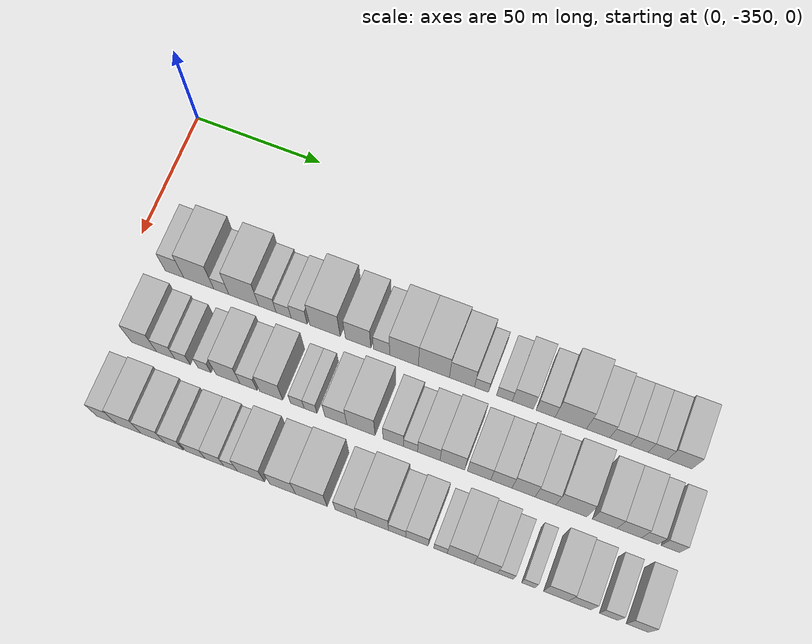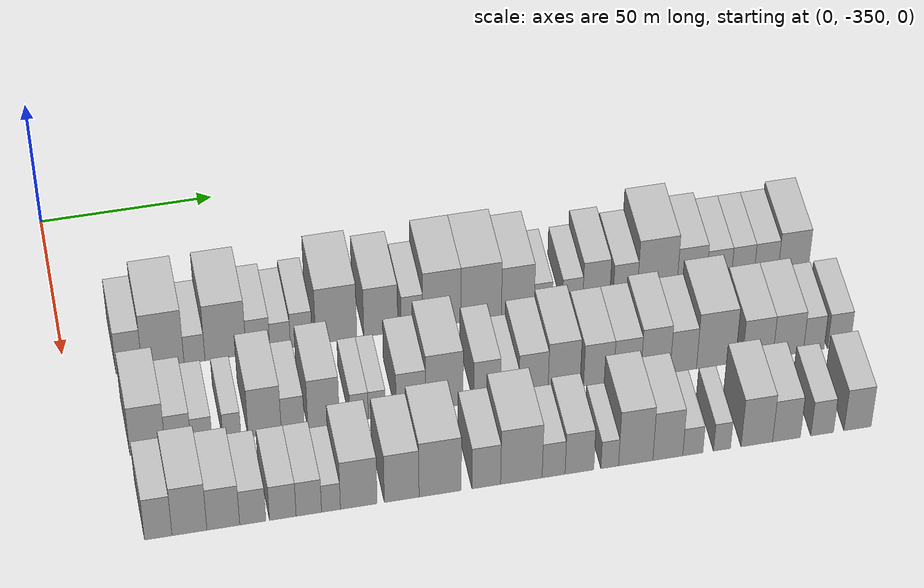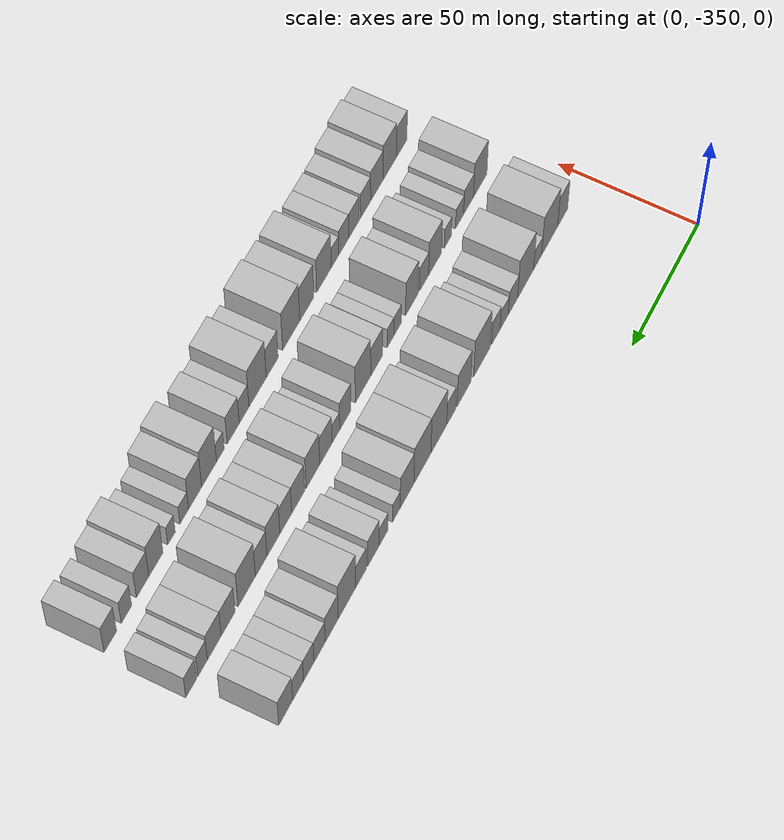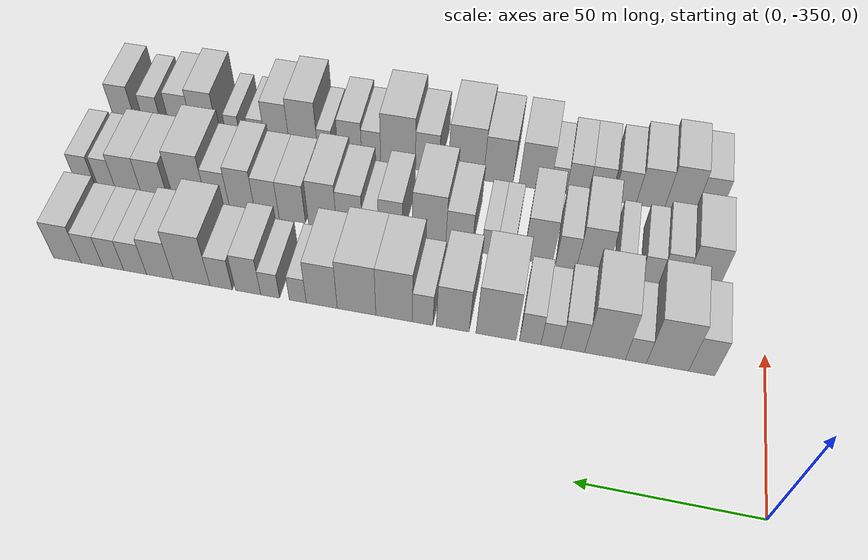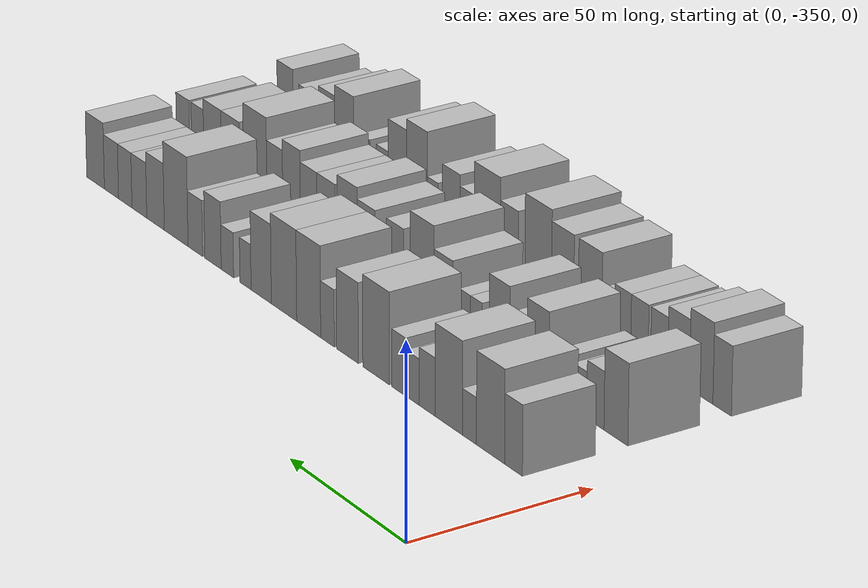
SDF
<sdf version="1.6">
 <world name="default">
  <model name="building_1">
   <static>1</static>
   <pose>50.0000 -332.3108 0 0.000000 0.000000 0.000000</pose>
   <link name="link">
    <pose>0 0 9.00 0 0 0</pose>
    <collision name="collision"><geometry><box><size>20.0000 7.3784 18.0000</size></box></geometry></collision>
    <visual name="visual">
     <cast_shadows>0</cast_shadows>
     <geometry><box><size>20.0000 7.3784 18.0000</size></box></geometry>
     <material>
      <script>
       <uri>model://HANNAS_wall/materials/scripts</uri>
       <uri>model://HANNAS_wall/materials/textures</uri>
       <name>vrc/HANNAS_wall</name>
      </script>
     </material>
    </visual>
   </link>
  </model>
  <model name="building_2">
   <static>1</static>
   <pose>50.0000 -322.6757 0 0.000000 0.000000 0.000000</pose>
   <link name="link">
    <pose>0 0 12.00 0 0 0</pose>
    <collision name="collision"><geometry><box><size>20.0000 11.8918 24.0000</size></box></geometry></collision>
    <visual name="visual">
     <cast_shadows>0</cast_shadows>
     <geometry><box><size>20.0000 11.8918 24.0000</size></box></geometry>
     <material>
      <script>
       <uri>model://HANNAS_wall/materials/scripts</uri>
       <uri>model://HANNAS_wall/materials/textures</uri>
       <name>vrc/HANNAS_wall</name>
      </script>
     </material>
    </visual>
   </link>
  </model>
  <model name="building_3">
   <static>1</static>
   <pose>50.0000 -313.7521 0 0.000000 0.000000 0.000000</pose>
   <link name="link">
    <pose>0 0 6.00 0 0 0</pose>
    <collision name="collision"><geometry><box><size>20.0000 5.9555 12.0000</size></box></geometry></collision>
    <visual name="visual">
     <cast_shadows>0</cast_shadows>
     <geometry><box><size>20.0000 5.9555 12.0000</size></box></geometry>
     <material>
      <script>
       <uri>model://HANNAS_wall/materials/scripts</uri>
       <uri>model://HANNAS_wall/materials/textures</uri>
       <name>vrc/HANNAS_wall</name>
      </script>
     </material>
    </visual>
   </link>
  </model>
  <model name="building_4">
   <static>1</static>
   <pose>50.0000 -304.9141 0 0.000000 0.000000 0.000000</pose>
   <link name="link">
    <pose>0 0 12.00 0 0 0</pose>
    <collision name="collision"><geometry><box><size>20.0000 11.7204 24.0000</size></box></geometry></collision>
    <visual name="visual">
     <cast_shadows>0</cast_shadows>
     <geometry><box><size>20.0000 11.7204 24.0000</size></box></geometry>
     <material>
      <script>
       <uri>model://HANNAS_wall/materials/scripts</uri>
       <uri>model://HANNAS_wall/materials/textures</uri>
       <name>vrc/HANNAS_wall</name>
      </script>
     </material>
    </visual>
   </link>
  </model>
  <model name="building_5">
   <static>1</static>
   <pose>50.0000 -295.6579 0 0.000000 0.000000 0.000000</pose>
   <link name="link">
    <pose>0 0 7.50 0 0 0</pose>
    <collision name="collision"><geometry><box><size>20.0000 6.7922 15.0000</size></box></geometry></collision>
    <visual name="visual">
     <cast_shadows>0</cast_shadows>
     <geometry><box><size>20.0000 6.7922 15.0000</size></box></geometry>
     <material>
      <script>
       <uri>model://HANNAS_wall/materials/scripts</uri>
       <uri>model://HANNAS_wall/materials/textures</uri>
       <name>vrc/HANNAS_wall</name>
      </script>
     </material>
    </visual>
   </link>
  </model>
  <model name="building_6">
   <static>1</static>
   <pose>50.0000 -289.3308 0 0.000000 0.000000 0.000000</pose>
   <link name="link">
    <pose>0 0 6.00 0 0 0</pose>
    <collision name="collision"><geometry><box><size>20.0000 5.8620 12.0000</size></box></geometry></collision>
    <visual name="visual">
     <cast_shadows>0</cast_shadows>
     <geometry><box><size>20.0000 5.8620 12.0000</size></box></geometry>
     <material>
      <script>
       <uri>model://HANNAS_wall/materials/scripts</uri>
       <uri>model://HANNAS_wall/materials/textures</uri>
       <name>vrc/HANNAS_wall</name>
      </script>
     </material>
    </visual>
   </link>
  </model>
  <model name="building_7">
   <static>1</static>
   <pose>50.0000 -283.2751 0 0.000000 0.000000 0.000000</pose>
   <link name="link">
    <pose>0 0 7.50 0 0 0</pose>
    <collision name="collision"><geometry><box><size>20.0000 6.2495 15.0000</size></box></geometry></collision>
    <visual name="visual">
     <cast_shadows>0</cast_shadows>
     <geometry><box><size>20.0000 6.2495 15.0000</size></box></geometry>
     <material>
      <script>
       <uri>model://HANNAS_wall/materials/scripts</uri>
       <uri>model://HANNAS_wall/materials/textures</uri>
       <name>vrc/HANNAS_wall</name>
      </script>
     </material>
    </visual>
   </link>
  </model>
  <model name="building_8">
   <static>1</static>
   <pose>50.0000 -273.2526 0 0.000000 0.000000 0.000000</pose>
   <link name="link">
    <pose>0 0 12.00 0 0 0</pose>
    <collision name="collision"><geometry><box><size>20.0000 11.7955 24.0000</size></box></geometry></collision>
    <visual name="visual">
     <cast_shadows>0</cast_shadows>
     <geometry><box><size>20.0000 11.7955 24.0000</size></box></geometry>
     <material>
      <script>
       <uri>model://HANNAS_wall/materials/scripts</uri>
       <uri>model://HANNAS_wall/materials/textures</uri>
       <name>vrc/HANNAS_wall</name>
      </script>
     </material>
    </visual>
   </link>
  </model>
  <model name="building_9">
   <static>1</static>
   <pose>50.0000 -260.4622 0 0.000000 0.000000 0.000000</pose>
   <link name="link">
    <pose>0 0 10.50 0 0 0</pose>
    <collision name="collision"><geometry><box><size>20.0000 9.7853 21.0000</size></box></geometry></collision>
    <visual name="visual">
     <cast_shadows>0</cast_shadows>
     <geometry><box><size>20.0000 9.7853 21.0000</size></box></geometry>
     <material>
      <script>
       <uri>model://HANNAS_wall/materials/scripts</uri>
       <uri>model://HANNAS_wall/materials/textures</uri>
       <name>vrc/HANNAS_wall</name>
      </script>
     </material>
    </visual>
   </link>
  </model>
  <model name="building_10">
   <static>1</static>
   <pose>50.0000 -251.4611 0 0.000000 0.000000 0.000000</pose>
   <link name="link">
    <pose>0 0 7.50 0 0 0</pose>
    <collision name="collision"><geometry><box><size>20.0000 6.2170 15.0000</size></box></geometry></collision>
    <visual name="visual">
     <cast_shadows>0</cast_shadows>
     <geometry><box><size>20.0000 6.2170 15.0000</size></box></geometry>
     <material>
      <script>
       <uri>model://HANNAS_wall/materials/scripts</uri>
       <uri>model://HANNAS_wall/materials/textures</uri>
       <name>vrc/HANNAS_wall</name>
      </script>
     </material>
    </visual>
   </link>
  </model>
  <model name="building_11">
   <static>1</static>
   <pose>50.0000 -242.8656 0 0.000000 0.000000 0.000000</pose>
   <link name="link">
    <pose>0 0 12.00 0 0 0</pose>
    <collision name="collision"><geometry><box><size>20.0000 10.9740 24.0000</size></box></geometry></collision>
    <visual name="visual">
     <cast_shadows>0</cast_shadows>
     <geometry><box><size>20.0000 10.9740 24.0000</size></box></geometry>
     <material>
      <script>
       <uri>model://HANNAS_wall/materials/scripts</uri>
       <uri>model://HANNAS_wall/materials/textures</uri>
       <name>vrc/HANNAS_wall</name>
      </script>
     </material>
    </visual>
   </link>
  </model>
  <model name="building_12">
   <static>1</static>
   <pose>50.0000 -231.5068 0 0.000000 0.000000 0.000000</pose>
   <link name="link">
    <pose>0 0 12.00 0 0 0</pose>
    <collision name="collision"><geometry><box><size>20.0000 11.7435 24.0000</size></box></geometry></collision>
    <visual name="visual">
     <cast_shadows>0</cast_shadows>
     <geometry><box><size>20.0000 11.7435 24.0000</size></box></geometry>
     <material>
      <script>
       <uri>model://HANNAS_wall/materials/scripts</uri>
       <uri>model://HANNAS_wall/materials/textures</uri>
       <name>vrc/HANNAS_wall</name>
      </script>
     </material>
    </visual>
   </link>
  </model>
  <model name="building_13">
   <static>1</static>
   <pose>50.0000 -220.8834 0 0.000000 0.000000 0.000000</pose>
   <link name="link">
    <pose>0 0 10.50 0 0 0</pose>
    <collision name="collision"><geometry><box><size>20.0000 9.5034 21.0000</size></box></geometry></collision>
    <visual name="visual">
     <cast_shadows>0</cast_shadows>
     <geometry><box><size>20.0000 9.5034 21.0000</size></box></geometry>
     <material>
      <script>
       <uri>model://HANNAS_wall/materials/scripts</uri>
       <uri>model://HANNAS_wall/materials/textures</uri>
       <name>vrc/HANNAS_wall</name>
      </script>
     </material>
    </visual>
   </link>
  </model>
  <model name="building_14">
   <static>1</static>
   <pose>50.0000 -213.5074 0 0.000000 0.000000 0.000000</pose>
   <link name="link">
    <pose>0 0 6.00 0 0 0</pose>
    <collision name="collision"><geometry><box><size>20.0000 5.2485 12.0000</size></box></geometry></collision>
    <visual name="visual">
     <cast_shadows>0</cast_shadows>
     <geometry><box><size>20.0000 5.2485 12.0000</size></box></geometry>
     <material>
      <script>
       <uri>model://HANNAS_wall/materials/scripts</uri>
       <uri>model://HANNAS_wall/materials/textures</uri>
       <name>vrc/HANNAS_wall</name>
      </script>
     </material>
    </visual>
   </link>
  </model>
  <model name="building_15">
   <static>1</static>
   <pose>50.0000 -204.9327 0 0.000000 0.000000 0.000000</pose>
   <link name="link">
    <pose>0 0 6.00 0 0 0</pose>
    <collision name="collision"><geometry><box><size>20.0000 5.9009 12.0000</size></box></geometry></collision>
    <visual name="visual">
     <cast_shadows>0</cast_shadows>
     <geometry><box><size>20.0000 5.9009 12.0000</size></box></geometry>
     <material>
      <script>
       <uri>model://HANNAS_wall/materials/scripts</uri>
       <uri>model://HANNAS_wall/materials/textures</uri>
       <name>vrc/HANNAS_wall</name>
      </script>
     </material>
    </visual>
   </link>
  </model>
  <model name="building_16">
   <static>1</static>
   <pose>50.0000 -198.0368 0 0.000000 0.000000 0.000000</pose>
   <link name="link">
    <pose>0 0 9.00 0 0 0</pose>
    <collision name="collision"><geometry><box><size>20.0000 7.8909 18.0000</size></box></geometry></collision>
    <visual name="visual">
     <cast_shadows>0</cast_shadows>
     <geometry><box><size>20.0000 7.8909 18.0000</size></box></geometry>
     <material>
      <script>
       <uri>model://HANNAS_wall/materials/scripts</uri>
       <uri>model://HANNAS_wall/materials/textures</uri>
       <name>vrc/HANNAS_wall</name>
      </script>
     </material>
    </visual>
   </link>
  </model>
  <model name="building_17">
   <static>1</static>
   <pose>50.0000 -189.5575 0 0.000000 0.000000 0.000000</pose>
   <link name="link">
    <pose>0 0 7.50 0 0 0</pose>
    <collision name="collision"><geometry><box><size>20.0000 7.0677 15.0000</size></box></geometry></collision>
    <visual name="visual">
     <cast_shadows>0</cast_shadows>
     <geometry><box><size>20.0000 7.0677 15.0000</size></box></geometry>
     <material>
      <script>
       <uri>model://HANNAS_wall/materials/scripts</uri>
       <uri>model://HANNAS_wall/materials/textures</uri>
       <name>vrc/HANNAS_wall</name>
      </script>
     </material>
    </visual>
   </link>
  </model>
  <model name="building_18">
   <static>1</static>
   <pose>50.0000 -180.2230 0 0.000000 0.000000 0.000000</pose>
   <link name="link">
    <pose>0 0 12.00 0 0 0</pose>
    <collision name="collision"><geometry><box><size>20.0000 11.6012 24.0000</size></box></geometry></collision>
    <visual name="visual">
     <cast_shadows>0</cast_shadows>
     <geometry><box><size>20.0000 11.6012 24.0000</size></box></geometry>
     <material>
      <script>
       <uri>model://HANNAS_wall/materials/scripts</uri>
       <uri>model://HANNAS_wall/materials/textures</uri>
       <name>vrc/HANNAS_wall</name>
      </script>
     </material>
    </visual>
   </link>
  </model>
  <model name="building_19">
   <static>1</static>
   <pose>50.0000 -170.1049 0 0.000000 0.000000 0.000000</pose>
   <link name="link">
    <pose>0 0 9.00 0 0 0</pose>
    <collision name="collision"><geometry><box><size>20.0000 8.6351 18.0000</size></box></geometry></collision>
    <visual name="visual">
     <cast_shadows>0</cast_shadows>
     <geometry><box><size>20.0000 8.6351 18.0000</size></box></geometry>
     <material>
      <script>
       <uri>model://HANNAS_wall/materials/scripts</uri>
       <uri>model://HANNAS_wall/materials/textures</uri>
       <name>vrc/HANNAS_wall</name>
      </script>
     </material>
    </visual>
   </link>
  </model>
  <model name="building_20">
   <static>1</static>
   <pose>50.0000 -162.1165 0 0.000000 0.000000 0.000000</pose>
   <link name="link">
    <pose>0 0 7.50 0 0 0</pose>
    <collision name="collision"><geometry><box><size>20.0000 7.3418 15.0000</size></box></geometry></collision>
    <visual name="visual">
     <cast_shadows>0</cast_shadows>
     <geometry><box><size>20.0000 7.3418 15.0000</size></box></geometry>
     <material>
      <script>
       <uri>model://HANNAS_wall/materials/scripts</uri>
       <uri>model://HANNAS_wall/materials/textures</uri>
       <name>vrc/HANNAS_wall</name>
      </script>
     </material>
    </visual>
   </link>
  </model>
  <model name="building_21">
   <static>1</static>
   <pose>50.0000 -155.0835 0 0.000000 0.000000 0.000000</pose>
   <link name="link">
    <pose>0 0 7.50 0 0 0</pose>
    <collision name="collision"><geometry><box><size>20.0000 6.7240 15.0000</size></box></geometry></collision>
    <visual name="visual">
     <cast_shadows>0</cast_shadows>
     <geometry><box><size>20.0000 6.7240 15.0000</size></box></geometry>
     <material>
      <script>
       <uri>model://HANNAS_wall/materials/scripts</uri>
       <uri>model://HANNAS_wall/materials/textures</uri>
       <name>vrc/HANNAS_wall</name>
      </script>
     </material>
    </visual>
   </link>
  </model>
  <model name="building_22">
   <static>1</static>
   <pose>50.0000 -148.1666 0 0.000000 0.000000 0.000000</pose>
   <link name="link">
    <pose>0 0 7.50 0 0 0</pose>
    <collision name="collision"><geometry><box><size>20.0000 7.1098 15.0000</size></box></geometry></collision>
    <visual name="visual">
     <cast_shadows>0</cast_shadows>
     <geometry><box><size>20.0000 7.1098 15.0000</size></box></geometry>
     <material>
      <script>
       <uri>model://HANNAS_wall/materials/scripts</uri>
       <uri>model://HANNAS_wall/materials/textures</uri>
       <name>vrc/HANNAS_wall</name>
      </script>
     </material>
    </visual>
   </link>
  </model>
  <model name="building_23">
   <static>1</static>
   <pose>50.0000 -140.1274 0 0.000000 0.000000 0.000000</pose>
   <link name="link">
    <pose>0 0 9.00 0 0 0</pose>
    <collision name="collision"><geometry><box><size>20.0000 8.9688 18.0000</size></box></geometry></collision>
    <visual name="visual">
     <cast_shadows>0</cast_shadows>
     <geometry><box><size>20.0000 8.9688 18.0000</size></box></geometry>
     <material>
      <script>
       <uri>model://HANNAS_wall/materials/scripts</uri>
       <uri>model://HANNAS_wall/materials/textures</uri>
       <name>vrc/HANNAS_wall</name>
      </script>
     </material>
    </visual>
   </link>
  </model>
  <model name="building_67">
   <static>1</static>
   <pose>79.0000 -331.0777 0 0.000000 0.000000 0.000000</pose>
   <link name="link">
    <pose>0 0 10.50 0 0 0</pose>
    <collision name="collision"><geometry><box><size>20.0000 9.8445 21.0000</size></box></geometry></collision>
    <visual name="visual">
     <cast_shadows>0</cast_shadows>
     <geometry><box><size>20.0000 9.8445 21.0000</size></box></geometry>
     <material>
      <script>
       <uri>model://HANNAS_wall/materials/scripts</uri>
       <uri>model://HANNAS_wall/materials/textures</uri>
       <name>vrc/HANNAS_wall</name>
      </script>
     </material>
    </visual>
   </link>
  </model>
  <model name="building_68">
   <static>1</static>
   <pose>79.0000 -322.5721 0 0.000000 0.000000 0.000000</pose>
   <link name="link">
    <pose>0 0 7.50 0 0 0</pose>
    <collision name="collision"><geometry><box><size>20.0000 7.1668 15.0000</size></box></geometry></collision>
    <visual name="visual">
     <cast_shadows>0</cast_shadows>
     <geometry><box><size>20.0000 7.1668 15.0000</size></box></geometry>
     <material>
      <script>
       <uri>model://HANNAS_wall/materials/scripts</uri>
       <uri>model://HANNAS_wall/materials/textures</uri>
       <name>vrc/HANNAS_wall</name>
      </script>
     </material>
    </visual>
   </link>
  </model>
  <model name="building_69">
   <static>1</static>
   <pose>79.0000 -316.0284 0 0.000000 0.000000 0.000000</pose>
   <link name="link">
    <pose>0 0 6.00 0 0 0</pose>
    <collision name="collision"><geometry><box><size>20.0000 5.9204 12.0000</size></box></geometry></collision>
    <visual name="visual">
     <cast_shadows>0</cast_shadows>
     <geometry><box><size>20.0000 5.9204 12.0000</size></box></geometry>
     <material>
      <script>
       <uri>model://HANNAS_wall/materials/scripts</uri>
       <uri>model://HANNAS_wall/materials/textures</uri>
       <name>vrc/HANNAS_wall</name>
      </script>
     </material>
    </visual>
   </link>
  </model>
  <model name="building_70">
   <static>1</static>
   <pose>79.0000 -307.5376 0 0.000000 0.000000 0.000000</pose>
   <link name="link">
    <pose>0 0 6.00 0 0 0</pose>
    <collision name="collision"><geometry><box><size>20.0000 5.0613 12.0000</size></box></geometry></collision>
    <visual name="visual">
     <cast_shadows>0</cast_shadows>
     <geometry><box><size>20.0000 5.0613 12.0000</size></box></geometry>
     <material>
      <script>
       <uri>model://HANNAS_wall/materials/scripts</uri>
       <uri>model://HANNAS_wall/materials/textures</uri>
       <name>vrc/HANNAS_wall</name>
      </script>
     </material>
    </visual>
   </link>
  </model>
  <model name="building_71">
   <static>1</static>
   <pose>79.0000 -298.3818 0 0.000000 0.000000 0.000000</pose>
   <link name="link">
    <pose>0 0 10.50 0 0 0</pose>
    <collision name="collision"><geometry><box><size>20.0000 9.2502 21.0000</size></box></geometry></collision>
    <visual name="visual">
     <cast_shadows>0</cast_shadows>
     <geometry><box><size>20.0000 9.2502 21.0000</size></box></geometry>
     <material>
      <script>
       <uri>model://HANNAS_wall/materials/scripts</uri>
       <uri>model://HANNAS_wall/materials/textures</uri>
       <name>vrc/HANNAS_wall</name>
      </script>
     </material>
    </visual>
   </link>
  </model>
  <model name="building_72">
   <static>1</static>
   <pose>79.0000 -290.5186 0 0.000000 0.000000 0.000000</pose>
   <link name="link">
    <pose>0 0 7.50 0 0 0</pose>
    <collision name="collision"><geometry><box><size>20.0000 6.4762 15.0000</size></box></geometry></collision>
    <visual name="visual">
     <cast_shadows>0</cast_shadows>
     <geometry><box><size>20.0000 6.4762 15.0000</size></box></geometry>
     <material>
      <script>
       <uri>model://HANNAS_wall/materials/scripts</uri>
       <uri>model://HANNAS_wall/materials/textures</uri>
       <name>vrc/HANNAS_wall</name>
      </script>
     </material>
    </visual>
   </link>
  </model>
  <model name="building_73">
   <static>1</static>
   <pose>79.0000 -281.8414 0 0.000000 0.000000 0.000000</pose>
   <link name="link">
    <pose>0 0 10.50 0 0 0</pose>
    <collision name="collision"><geometry><box><size>20.0000 8.8783 21.0000</size></box></geometry></collision>
    <visual name="visual">
     <cast_shadows>0</cast_shadows>
     <geometry><box><size>20.0000 8.8783 21.0000</size></box></geometry>
     <material>
      <script>
       <uri>model://HANNAS_wall/materials/scripts</uri>
       <uri>model://HANNAS_wall/materials/textures</uri>
       <name>vrc/HANNAS_wall</name>
      </script>
     </material>
    </visual>
   </link>
  </model>
  <model name="building_74">
   <static>1</static>
   <pose>79.0000 -271.8258 0 0.000000 0.000000 0.000000</pose>
   <link name="link">
    <pose>0 0 6.00 0 0 0</pose>
    <collision name="collision"><geometry><box><size>20.0000 5.1529 12.0000</size></box></geometry></collision>
    <visual name="visual">
     <cast_shadows>0</cast_shadows>
     <geometry><box><size>20.0000 5.1529 12.0000</size></box></geometry>
     <material>
      <script>
       <uri>model://HANNAS_wall/materials/scripts</uri>
       <uri>model://HANNAS_wall/materials/textures</uri>
       <name>vrc/HANNAS_wall</name>
      </script>
     </material>
    </visual>
   </link>
  </model>
  <model name="building_75">
   <static>1</static>
   <pose>79.0000 -266.8189 0 0.000000 0.000000 0.000000</pose>
   <link name="link">
    <pose>0 0 6.00 0 0 0</pose>
    <collision name="collision"><geometry><box><size>20.0000 4.8611 12.0000</size></box></geometry></collision>
    <visual name="visual">
     <cast_shadows>0</cast_shadows>
     <geometry><box><size>20.0000 4.8611 12.0000</size></box></geometry>
     <material>
      <script>
       <uri>model://HANNAS_wall/materials/scripts</uri>
       <uri>model://HANNAS_wall/materials/textures</uri>
       <name>vrc/HANNAS_wall</name>
      </script>
     </material>
    </visual>
   </link>
  </model>
  <model name="building_76">
   <static>1</static>
   <pose>79.0000 -257.2278 0 0.000000 0.000000 0.000000</pose>
   <link name="link">
    <pose>0 0 9.00 0 0 0</pose>
    <collision name="collision"><geometry><box><size>20.0000 8.3211 18.0000</size></box></geometry></collision>
    <visual name="visual">
     <cast_shadows>0</cast_shadows>
     <geometry><box><size>20.0000 8.3211 18.0000</size></box></geometry>
     <material>
      <script>
       <uri>model://HANNAS_wall/materials/scripts</uri>
       <uri>model://HANNAS_wall/materials/textures</uri>
       <name>vrc/HANNAS_wall</name>
      </script>
     </material>
    </visual>
   </link>
  </model>
  <model name="building_77">
   <static>1</static>
   <pose>79.0000 -247.7538 0 0.000000 0.000000 0.000000</pose>
   <link name="link">
    <pose>0 0 12.00 0 0 0</pose>
    <collision name="collision"><geometry><box><size>20.0000 10.6268 24.0000</size></box></geometry></collision>
    <visual name="visual">
     <cast_shadows>0</cast_shadows>
     <geometry><box><size>20.0000 10.6268 24.0000</size></box></geometry>
     <material>
      <script>
       <uri>model://HANNAS_wall/materials/scripts</uri>
       <uri>model://HANNAS_wall/materials/textures</uri>
       <name>vrc/HANNAS_wall</name>
      </script>
     </material>
    </visual>
   </link>
  </model>
  <model name="building_78">
   <static>1</static>
   <pose>79.0000 -235.6024 0 0.000000 0.000000 0.000000</pose>
   <link name="link">
    <pose>0 0 9.00 0 0 0</pose>
    <collision name="collision"><geometry><box><size>20.0000 7.6760 18.0000</size></box></geometry></collision>
    <visual name="visual">
     <cast_shadows>0</cast_shadows>
     <geometry><box><size>20.0000 7.6760 18.0000</size></box></geometry>
     <material>
      <script>
       <uri>model://HANNAS_wall/materials/scripts</uri>
       <uri>model://HANNAS_wall/materials/textures</uri>
       <name>vrc/HANNAS_wall</name>
      </script>
     </material>
    </visual>
   </link>
  </model>
  <model name="building_79">
   <static>1</static>
   <pose>79.0000 -229.1587 0 0.000000 0.000000 0.000000</pose>
   <link name="link">
    <pose>0 0 6.00 0 0 0</pose>
    <collision name="collision"><geometry><box><size>20.0000 5.2114 12.0000</size></box></geometry></collision>
    <visual name="visual">
     <cast_shadows>0</cast_shadows>
     <geometry><box><size>20.0000 5.2114 12.0000</size></box></geometry>
     <material>
      <script>
       <uri>model://HANNAS_wall/materials/scripts</uri>
       <uri>model://HANNAS_wall/materials/textures</uri>
       <name>vrc/HANNAS_wall</name>
      </script>
     </material>
    </visual>
   </link>
  </model>
  <model name="building_80">
   <static>1</static>
   <pose>79.0000 -222.3846 0 0.000000 0.000000 0.000000</pose>
   <link name="link">
    <pose>0 0 9.00 0 0 0</pose>
    <collision name="collision"><geometry><box><size>20.0000 8.3369 18.0000</size></box></geometry></collision>
    <visual name="visual">
     <cast_shadows>0</cast_shadows>
     <geometry><box><size>20.0000 8.3369 18.0000</size></box></geometry>
     <material>
      <script>
       <uri>model://HANNAS_wall/materials/scripts</uri>
       <uri>model://HANNAS_wall/materials/textures</uri>
       <name>vrc/HANNAS_wall</name>
      </script>
     </material>
    </visual>
   </link>
  </model>
  <model name="building_81">
   <static>1</static>
   <pose>79.0000 -213.6315 0 0.000000 0.000000 0.000000</pose>
   <link name="link">
    <pose>0 0 10.50 0 0 0</pose>
    <collision name="collision"><geometry><box><size>20.0000 9.1692 21.0000</size></box></geometry></collision>
    <visual name="visual">
     <cast_shadows>0</cast_shadows>
     <geometry><box><size>20.0000 9.1692 21.0000</size></box></geometry>
     <material>
      <script>
       <uri>model://HANNAS_wall/materials/scripts</uri>
       <uri>model://HANNAS_wall/materials/textures</uri>
       <name>vrc/HANNAS_wall</name>
      </script>
     </material>
    </visual>
   </link>
  </model>
  <model name="building_82">
   <static>1</static>
   <pose>79.0000 -203.7266 0 0.000000 0.000000 0.000000</pose>
   <link name="link">
    <pose>0 0 9.00 0 0 0</pose>
    <collision name="collision"><geometry><box><size>20.0000 8.6408 18.0000</size></box></geometry></collision>
    <visual name="visual">
     <cast_shadows>0</cast_shadows>
     <geometry><box><size>20.0000 8.6408 18.0000</size></box></geometry>
     <material>
      <script>
       <uri>model://HANNAS_wall/materials/scripts</uri>
       <uri>model://HANNAS_wall/materials/textures</uri>
       <name>vrc/HANNAS_wall</name>
      </script>
     </material>
    </visual>
   </link>
  </model>
  <model name="building_83">
   <static>1</static>
   <pose>79.0000 -195.5025 0 0.000000 0.000000 0.000000</pose>
   <link name="link">
    <pose>0 0 9.00 0 0 0</pose>
    <collision name="collision"><geometry><box><size>20.0000 7.8075 18.0000</size></box></geometry></collision>
    <visual name="visual">
     <cast_shadows>0</cast_shadows>
     <geometry><box><size>20.0000 7.8075 18.0000</size></box></geometry>
     <material>
      <script>
       <uri>model://HANNAS_wall/materials/scripts</uri>
       <uri>model://HANNAS_wall/materials/textures</uri>
       <name>vrc/HANNAS_wall</name>
      </script>
     </material>
    </visual>
   </link>
  </model>
  <model name="building_84">
   <static>1</static>
   <pose>79.0000 -187.3815 0 0.000000 0.000000 0.000000</pose>
   <link name="link">
    <pose>0 0 10.50 0 0 0</pose>
    <collision name="collision"><geometry><box><size>20.0000 8.4344 21.0000</size></box></geometry></collision>
    <visual name="visual">
     <cast_shadows>0</cast_shadows>
     <geometry><box><size>20.0000 8.4344 21.0000</size></box></geometry>
     <material>
      <script>
       <uri>model://HANNAS_wall/materials/scripts</uri>
       <uri>model://HANNAS_wall/materials/textures</uri>
       <name>vrc/HANNAS_wall</name>
      </script>
     </material>
    </visual>
   </link>
  </model>
  <model name="building_85">
   <static>1</static>
   <pose>79.0000 -179.3640 0 0.000000 0.000000 0.000000</pose>
   <link name="link">
    <pose>0 0 9.00 0 0 0</pose>
    <collision name="collision"><geometry><box><size>20.0000 7.6006 18.0000</size></box></geometry></collision>
    <visual name="visual">
     <cast_shadows>0</cast_shadows>
     <geometry><box><size>20.0000 7.6006 18.0000</size></box></geometry>
     <material>
      <script>
       <uri>model://HANNAS_wall/materials/scripts</uri>
       <uri>model://HANNAS_wall/materials/textures</uri>
       <name>vrc/HANNAS_wall</name>
      </script>
     </material>
    </visual>
   </link>
  </model>
  <model name="building_86">
   <static>1</static>
   <pose>79.0000 -169.9344 0 0.000000 0.000000 0.000000</pose>
   <link name="link">
    <pose>0 0 12.00 0 0 0</pose>
    <collision name="collision"><geometry><box><size>20.0000 11.2585 24.0000</size></box></geometry></collision>
    <visual name="visual">
     <cast_shadows>0</cast_shadows>
     <geometry><box><size>20.0000 11.2585 24.0000</size></box></geometry>
     <material>
      <script>
       <uri>model://HANNAS_wall/materials/scripts</uri>
       <uri>model://HANNAS_wall/materials/textures</uri>
       <name>vrc/HANNAS_wall</name>
      </script>
     </material>
    </visual>
   </link>
  </model>
  <model name="building_87">
   <static>1</static>
   <pose>79.0000 -157.8646 0 0.000000 0.000000 0.000000</pose>
   <link name="link">
    <pose>0 0 9.00 0 0 0</pose>
    <collision name="collision"><geometry><box><size>20.0000 8.8811 18.0000</size></box></geometry></collision>
    <visual name="visual">
     <cast_shadows>0</cast_shadows>
     <geometry><box><size>20.0000 8.8811 18.0000</size></box></geometry>
     <material>
      <script>
       <uri>model://HANNAS_wall/materials/scripts</uri>
       <uri>model://HANNAS_wall/materials/textures</uri>
       <name>vrc/HANNAS_wall</name>
      </script>
     </material>
    </visual>
   </link>
  </model>
  <model name="building_88">
   <static>1</static>
   <pose>79.0000 -149.0118 0 0.000000 0.000000 0.000000</pose>
   <link name="link">
    <pose>0 0 9.00 0 0 0</pose>
    <collision name="collision"><geometry><box><size>20.0000 8.8245 18.0000</size></box></geometry></collision>
    <visual name="visual">
     <cast_shadows>0</cast_shadows>
     <geometry><box><size>20.0000 8.8245 18.0000</size></box></geometry>
     <material>
      <script>
       <uri>model://HANNAS_wall/materials/scripts</uri>
       <uri>model://HANNAS_wall/materials/textures</uri>
       <name>vrc/HANNAS_wall</name>
      </script>
     </material>
    </visual>
   </link>
  </model>
  <model name="building_89">
   <static>1</static>
   <pose>79.0000 -141.5870 0 0.000000 0.000000 0.000000</pose>
   <link name="link">
    <pose>0 0 7.50 0 0 0</pose>
    <collision name="collision"><geometry><box><size>20.0000 6.0252 15.0000</size></box></geometry></collision>
    <visual name="visual">
     <cast_shadows>0</cast_shadows>
     <geometry><box><size>20.0000 6.0252 15.0000</size></box></geometry>
     <material>
      <script>
       <uri>model://HANNAS_wall/materials/scripts</uri>
       <uri>model://HANNAS_wall/materials/textures</uri>
       <name>vrc/HANNAS_wall</name>
      </script>
     </material>
    </visual>
   </link>
  </model>
  <model name="building_90">
   <static>1</static>
   <pose>79.0000 -134.2580 0 0.000000 0.000000 0.000000</pose>
   <link name="link">
    <pose>0 0 7.50 0 0 0</pose>
    <collision name="collision"><geometry><box><size>20.0000 6.6327 15.0000</size></box></geometry></collision>
    <visual name="visual">
     <cast_shadows>0</cast_shadows>
     <geometry><box><size>20.0000 6.6327 15.0000</size></box></geometry>
     <material>
      <script>
       <uri>model://HANNAS_wall/materials/scripts</uri>
       <uri>model://HANNAS_wall/materials/textures</uri>
       <name>vrc/HANNAS_wall</name>
      </script>
     </material>
    </visual>
   </link>
  </model>
  <model name="building_135">
   <static>1</static>
   <pose>108.0000 -332.2345 0 0.000000 0.000000 0.000000</pose>
   <link name="link">
    <pose>0 0 9.00 0 0 0</pose>
    <collision name="collision"><geometry><box><size>20.0000 7.5309 18.0000</size></box></geometry></collision>
    <visual name="visual">
     <cast_shadows>0</cast_shadows>
     <geometry><box><size>20.0000 7.5309 18.0000</size></box></geometry>
     <material>
      <script>
       <uri>model://HANNAS_wall/materials/scripts</uri>
       <uri>model://HANNAS_wall/materials/textures</uri>
       <name>vrc/HANNAS_wall</name>
      </script>
     </material>
    </visual>
   </link>
  </model>
  <model name="building_136">
   <static>1</static>
   <pose>108.0000 -323.6910 0 0.000000 0.000000 0.000000</pose>
   <link name="link">
    <pose>0 0 10.50 0 0 0</pose>
    <collision name="collision"><geometry><box><size>20.0000 9.5561 21.0000</size></box></geometry></collision>
    <visual name="visual">
     <cast_shadows>0</cast_shadows>
     <geometry><box><size>20.0000 9.5561 21.0000</size></box></geometry>
     <material>
      <script>
       <uri>model://HANNAS_wall/materials/scripts</uri>
       <uri>model://HANNAS_wall/materials/textures</uri>
       <name>vrc/HANNAS_wall</name>
      </script>
     </material>
    </visual>
   </link>
  </model>
  <model name="building_137">
   <static>1</static>
   <pose>108.0000 -314.4202 0 0.000000 0.000000 0.000000</pose>
   <link name="link">
    <pose>0 0 9.00 0 0 0</pose>
    <collision name="collision"><geometry><box><size>20.0000 8.9856 18.0000</size></box></geometry></collision>
    <visual name="visual">
     <cast_shadows>0</cast_shadows>
     <geometry><box><size>20.0000 8.9856 18.0000</size></box></geometry>
     <material>
      <script>
       <uri>model://HANNAS_wall/materials/scripts</uri>
       <uri>model://HANNAS_wall/materials/textures</uri>
       <name>vrc/HANNAS_wall</name>
      </script>
     </material>
    </visual>
   </link>
  </model>
  <model name="building_138">
   <static>1</static>
   <pose>108.0000 -306.3308 0 0.000000 0.000000 0.000000</pose>
   <link name="link">
    <pose>0 0 7.50 0 0 0</pose>
    <collision name="collision"><geometry><box><size>20.0000 7.1933 15.0000</size></box></geometry></collision>
    <visual name="visual">
     <cast_shadows>0</cast_shadows>
     <geometry><box><size>20.0000 7.1933 15.0000</size></box></geometry>
     <material>
      <script>
       <uri>model://HANNAS_wall/materials/scripts</uri>
       <uri>model://HANNAS_wall/materials/textures</uri>
       <name>vrc/HANNAS_wall</name>
      </script>
     </material>
    </visual>
   </link>
  </model>
  <model name="building_139">
   <static>1</static>
   <pose>108.0000 -298.0703 0 0.000000 0.000000 0.000000</pose>
   <link name="link">
    <pose>0 0 7.50 0 0 0</pose>
    <collision name="collision"><geometry><box><size>20.0000 7.3277 15.0000</size></box></geometry></collision>
    <visual name="visual">
     <cast_shadows>0</cast_shadows>
     <geometry><box><size>20.0000 7.3277 15.0000</size></box></geometry>
     <material>
      <script>
       <uri>model://HANNAS_wall/materials/scripts</uri>
       <uri>model://HANNAS_wall/materials/textures</uri>
       <name>vrc/HANNAS_wall</name>
      </script>
     </material>
    </visual>
   </link>
  </model>
  <model name="building_140">
   <static>1</static>
   <pose>108.0000 -290.8923 0 0.000000 0.000000 0.000000</pose>
   <link name="link">
    <pose>0 0 7.50 0 0 0</pose>
    <collision name="collision"><geometry><box><size>20.0000 7.0283 15.0000</size></box></geometry></collision>
    <visual name="visual">
     <cast_shadows>0</cast_shadows>
     <geometry><box><size>20.0000 7.0283 15.0000</size></box></geometry>
     <material>
      <script>
       <uri>model://HANNAS_wall/materials/scripts</uri>
       <uri>model://HANNAS_wall/materials/textures</uri>
       <name>vrc/HANNAS_wall</name>
      </script>
     </material>
    </visual>
   </link>
  </model>
  <model name="building_141">
   <static>1</static>
   <pose>108.0000 -284.7669 0 0.000000 0.000000 0.000000</pose>
   <link name="link">
    <pose>0 0 6.00 0 0 0</pose>
    <collision name="collision"><geometry><box><size>20.0000 5.2225 12.0000</size></box></geometry></collision>
    <visual name="visual">
     <cast_shadows>0</cast_shadows>
     <geometry><box><size>20.0000 5.2225 12.0000</size></box></geometry>
     <material>
      <script>
       <uri>model://HANNAS_wall/materials/scripts</uri>
       <uri>model://HANNAS_wall/materials/textures</uri>
       <name>vrc/HANNAS_wall</name>
      </script>
     </material>
    </visual>
   </link>
  </model>
  <model name="building_142">
   <static>1</static>
   <pose>108.0000 -277.0806 0 0.000000 0.000000 0.000000</pose>
   <link name="link">
    <pose>0 0 10.50 0 0 0</pose>
    <collision name="collision"><geometry><box><size>20.0000 10.1501 21.0000</size></box></geometry></collision>
    <visual name="visual">
     <cast_shadows>0</cast_shadows>
     <geometry><box><size>20.0000 10.1501 21.0000</size></box></geometry>
     <material>
      <script>
       <uri>model://HANNAS_wall/materials/scripts</uri>
       <uri>model://HANNAS_wall/materials/textures</uri>
       <name>vrc/HANNAS_wall</name>
      </script>
     </material>
    </visual>
   </link>
  </model>
  <model name="building_143">
   <static>1</static>
   <pose>108.0000 -265.1861 0 0.000000 0.000000 0.000000</pose>
   <link name="link">
    <pose>0 0 10.50 0 0 0</pose>
    <collision name="collision"><geometry><box><size>20.0000 9.6389 21.0000</size></box></geometry></collision>
    <visual name="visual">
     <cast_shadows>0</cast_shadows>
     <geometry><box><size>20.0000 9.6389 21.0000</size></box></geometry>
     <material>
      <script>
       <uri>model://HANNAS_wall/materials/scripts</uri>
       <uri>model://HANNAS_wall/materials/textures</uri>
       <name>vrc/HANNAS_wall</name>
      </script>
     </material>
    </visual>
   </link>
  </model>
  <model name="building_144">
   <static>1</static>
   <pose>108.0000 -254.4990 0 0.000000 0.000000 0.000000</pose>
   <link name="link">
    <pose>0 0 12.00 0 0 0</pose>
    <collision name="collision"><geometry><box><size>20.0000 11.7352 24.0000</size></box></geometry></collision>
    <visual name="visual">
     <cast_shadows>0</cast_shadows>
     <geometry><box><size>20.0000 11.7352 24.0000</size></box></geometry>
     <material>
      <script>
       <uri>model://HANNAS_wall/materials/scripts</uri>
       <uri>model://HANNAS_wall/materials/textures</uri>
       <name>vrc/HANNAS_wall</name>
      </script>
     </material>
    </visual>
   </link>
  </model>
  <model name="building_145">
   <static>1</static>
   <pose>108.0000 -241.6320 0 0.000000 0.000000 0.000000</pose>
   <link name="link">
    <pose>0 0 9.00 0 0 0</pose>
    <collision name="collision"><geometry><box><size>20.0000 7.9990 18.0000</size></box></geometry></collision>
    <visual name="visual">
     <cast_shadows>0</cast_shadows>
     <geometry><box><size>20.0000 7.9990 18.0000</size></box></geometry>
     <material>
      <script>
       <uri>model://HANNAS_wall/materials/scripts</uri>
       <uri>model://HANNAS_wall/materials/textures</uri>
       <name>vrc/HANNAS_wall</name>
      </script>
     </material>
    </visual>
   </link>
  </model>
  <model name="building_146">
   <static>1</static>
   <pose>108.0000 -231.8156 0 0.000000 0.000000 0.000000</pose>
   <link name="link">
    <pose>0 0 12.00 0 0 0</pose>
    <collision name="collision"><geometry><box><size>20.0000 11.6337 24.0000</size></box></geometry></collision>
    <visual name="visual">
     <cast_shadows>0</cast_shadows>
     <geometry><box><size>20.0000 11.6337 24.0000</size></box></geometry>
     <material>
      <script>
       <uri>model://HANNAS_wall/materials/scripts</uri>
       <uri>model://HANNAS_wall/materials/textures</uri>
       <name>vrc/HANNAS_wall</name>
      </script>
     </material>
    </visual>
   </link>
  </model>
  <model name="building_147">
   <static>1</static>
   <pose>108.0000 -222.7878 0 0.000000 0.000000 0.000000</pose>
   <link name="link">
    <pose>0 0 7.50 0 0 0</pose>
    <collision name="collision"><geometry><box><size>20.0000 6.4220 15.0000</size></box></geometry></collision>
    <visual name="visual">
     <cast_shadows>0</cast_shadows>
     <geometry><box><size>20.0000 6.4220 15.0000</size></box></geometry>
     <material>
      <script>
       <uri>model://HANNAS_wall/materials/scripts</uri>
       <uri>model://HANNAS_wall/materials/textures</uri>
       <name>vrc/HANNAS_wall</name>
      </script>
     </material>
    </visual>
   </link>
  </model>
  <model name="building_148">
   <static>1</static>
   <pose>108.0000 -215.5376 0 0.000000 0.000000 0.000000</pose>
   <link name="link">
    <pose>0 0 9.00 0 0 0</pose>
    <collision name="collision"><geometry><box><size>20.0000 8.0783 18.0000</size></box></geometry></collision>
    <visual name="visual">
     <cast_shadows>0</cast_shadows>
     <geometry><box><size>20.0000 8.0783 18.0000</size></box></geometry>
     <material>
      <script>
       <uri>model://HANNAS_wall/materials/scripts</uri>
       <uri>model://HANNAS_wall/materials/textures</uri>
       <name>vrc/HANNAS_wall</name>
      </script>
     </material>
    </visual>
   </link>
  </model>
  <model name="building_149">
   <static>1</static>
   <pose>108.0000 -207.0139 0 0.000000 0.000000 0.000000</pose>
   <link name="link">
    <pose>0 0 6.00 0 0 0</pose>
    <collision name="collision"><geometry><box><size>20.0000 4.9690 12.0000</size></box></geometry></collision>
    <visual name="visual">
     <cast_shadows>0</cast_shadows>
     <geometry><box><size>20.0000 4.9690 12.0000</size></box></geometry>
     <material>
      <script>
       <uri>model://HANNAS_wall/materials/scripts</uri>
       <uri>model://HANNAS_wall/materials/textures</uri>
       <name>vrc/HANNAS_wall</name>
      </script>
     </material>
    </visual>
   </link>
  </model>
  <model name="building_150">
   <static>1</static>
   <pose>108.0000 -199.6841 0 0.000000 0.000000 0.000000</pose>
   <link name="link">
    <pose>0 0 12.00 0 0 0</pose>
    <collision name="collision"><geometry><box><size>20.0000 9.6908 24.0000</size></box></geometry></collision>
    <visual name="visual">
     <cast_shadows>0</cast_shadows>
     <geometry><box><size>20.0000 9.6908 24.0000</size></box></geometry>
     <material>
      <script>
       <uri>model://HANNAS_wall/materials/scripts</uri>
       <uri>model://HANNAS_wall/materials/textures</uri>
       <name>vrc/HANNAS_wall</name>
      </script>
     </material>
    </visual>
   </link>
  </model>
  <model name="building_151">
   <static>1</static>
   <pose>108.0000 -190.6066 0 0.000000 0.000000 0.000000</pose>
   <link name="link">
    <pose>0 0 10.50 0 0 0</pose>
    <collision name="collision"><geometry><box><size>20.0000 8.4643 21.0000</size></box></geometry></collision>
    <visual name="visual">
     <cast_shadows>0</cast_shadows>
     <geometry><box><size>20.0000 8.4643 21.0000</size></box></geometry>
     <material>
      <script>
       <uri>model://HANNAS_wall/materials/scripts</uri>
       <uri>model://HANNAS_wall/materials/textures</uri>
       <name>vrc/HANNAS_wall</name>
      </script>
     </material>
    </visual>
   </link>
  </model>
  <model name="building_152">
   <static>1</static>
   <pose>108.0000 -183.5290 0 0.000000 0.000000 0.000000</pose>
   <link name="link">
    <pose>0 0 6.00 0 0 0</pose>
    <collision name="collision"><geometry><box><size>20.0000 5.6908 12.0000</size></box></geometry></collision>
    <visual name="visual">
     <cast_shadows>0</cast_shadows>
     <geometry><box><size>20.0000 5.6908 12.0000</size></box></geometry>
     <material>
      <script>
       <uri>model://HANNAS_wall/materials/scripts</uri>
       <uri>model://HANNAS_wall/materials/textures</uri>
       <name>vrc/HANNAS_wall</name>
      </script>
     </material>
    </visual>
   </link>
  </model>
  <model name="building_153">
   <static>1</static>
   <pose>108.0000 -175.2665 0 0.000000 0.000000 0.000000</pose>
   <link name="link">
    <pose>0 0 6.00 0 0 0</pose>
    <collision name="collision"><geometry><box><size>20.0000 4.8341 12.0000</size></box></geometry></collision>
    <visual name="visual">
     <cast_shadows>0</cast_shadows>
     <geometry><box><size>20.0000 4.8341 12.0000</size></box></geometry>
     <material>
      <script>
       <uri>model://HANNAS_wall/materials/scripts</uri>
       <uri>model://HANNAS_wall/materials/textures</uri>
       <name>vrc/HANNAS_wall</name>
      </script>
     </material>
    </visual>
   </link>
  </model>
  <model name="building_154">
   <static>1</static>
   <pose>108.0000 -165.3628 0 0.000000 0.000000 0.000000</pose>
   <link name="link">
    <pose>0 0 10.50 0 0 0</pose>
    <collision name="collision"><geometry><box><size>20.0000 8.9732 21.0000</size></box></geometry></collision>
    <visual name="visual">
     <cast_shadows>0</cast_shadows>
     <geometry><box><size>20.0000 8.9732 21.0000</size></box></geometry>
     <material>
      <script>
       <uri>model://HANNAS_wall/materials/scripts</uri>
       <uri>model://HANNAS_wall/materials/textures</uri>
       <name>vrc/HANNAS_wall</name>
      </script>
     </material>
    </visual>
   </link>
  </model>
  <model name="building_155">
   <static>1</static>
   <pose>108.0000 -156.9213 0 0.000000 0.000000 0.000000</pose>
   <link name="link">
    <pose>0 0 9.00 0 0 0</pose>
    <collision name="collision"><geometry><box><size>20.0000 7.9098 18.0000</size></box></geometry></collision>
    <visual name="visual">
     <cast_shadows>0</cast_shadows>
     <geometry><box><size>20.0000 7.9098 18.0000</size></box></geometry>
     <material>
      <script>
       <uri>model://HANNAS_wall/materials/scripts</uri>
       <uri>model://HANNAS_wall/materials/textures</uri>
       <name>vrc/HANNAS_wall</name>
      </script>
     </material>
    </visual>
   </link>
  </model>
  <model name="building_156">
   <static>1</static>
   <pose>108.0000 -146.7246 0 0.000000 0.000000 0.000000</pose>
   <link name="link">
    <pose>0 0 7.50 0 0 0</pose>
    <collision name="collision"><geometry><box><size>20.0000 6.4835 15.0000</size></box></geometry></collision>
    <visual name="visual">
     <cast_shadows>0</cast_shadows>
     <geometry><box><size>20.0000 6.4835 15.0000</size></box></geometry>
     <material>
      <script>
       <uri>model://HANNAS_wall/materials/scripts</uri>
       <uri>model://HANNAS_wall/materials/textures</uri>
       <name>vrc/HANNAS_wall</name>
      </script>
     </material>
    </visual>
   </link>
  </model>
  <model name="building_157">
   <static>1</static>
   <pose>108.0000 -136.6005 0 0.000000 0.000000 0.000000</pose>
   <link name="link">
    <pose>0 0 9.00 0 0 0</pose>
    <collision name="collision"><geometry><box><size>20.0000 7.7647 18.0000</size></box></geometry></collision>
    <visual name="visual">
     <cast_shadows>0</cast_shadows>
     <geometry><box><size>20.0000 7.7647 18.0000</size></box></geometry>
     <material>
      <script>
       <uri>model://HANNAS_wall/materials/scripts</uri>
       <uri>model://HANNAS_wall/materials/textures</uri>
       <name>vrc/HANNAS_wall</name>
      </script>
     </material>
    </visual>
   </link>
  </model>
 </world>
</sdf>
